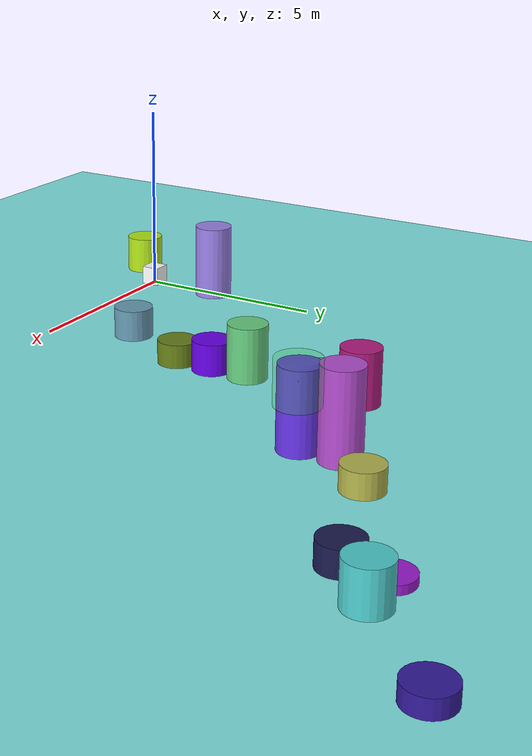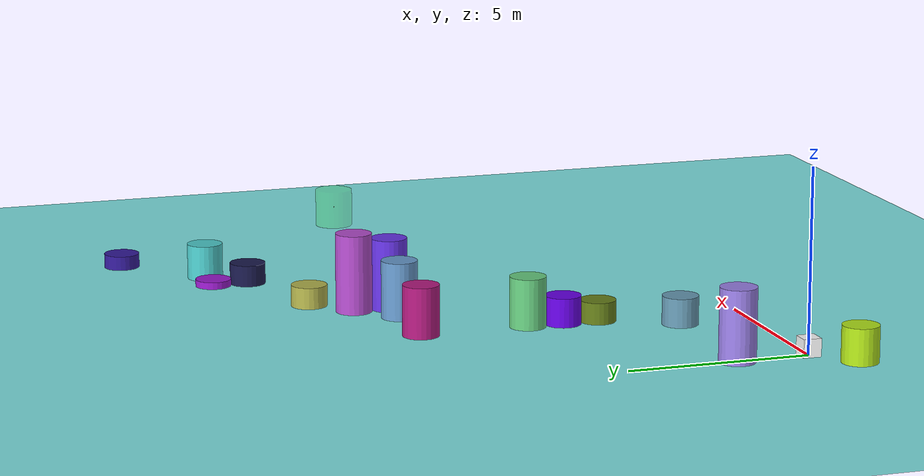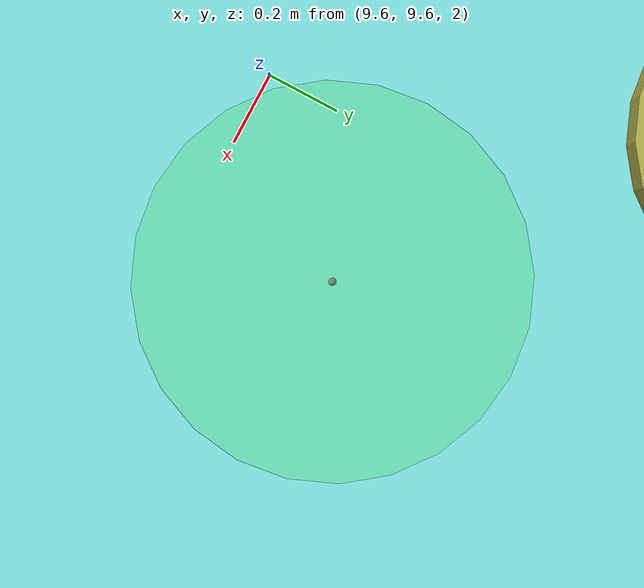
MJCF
<?xml version="1.0" ?>
<mujoco model="objects">
  <include file="objects_benchmark.xml" />
  <asset>
    <material name='plane' reflectance='0' texrepeat='1 1' texture='plane' texuniform='true'/>
    <texture builtin='checker' height='512' name='plane' rgb1='0.2 0.2 0.2' rgb2='0.4 0.4 0.4' type='2d' width='512'/>
    <texture builtin='gradient' height='128' rgb1='0.6 0.8 1' rgb2='0 0 0' type='skybox' width='128'/>
    <!--texture type="skybox" builtin="gradient" rgb1="1.0 1.0 1.0" rgb2="1.0 1.0 1.0" width="512" height="512"/-->
      <!--texture name="plane" type="2d" builtin="flat" rgb1="1 1 1" rgb2="1 1 1" width="512" height="512" mark="cross" markrgb="0 0 0"/-->
      <!--material name="plane" reflectance="0.0" texture="plane" texrepeat="3 3" texuniform="true"/-->
  </asset>

  <visual>
      <rgba com="0.502 1.0 0 0.5" contactforce="0.98 0.4 0.4 0.7" contactpoint="1.0 1.0 0.6 0.4"/>
      <scale com="0.2" forcewidth="0.035" contactwidth="0.10" contactheight="0.04"/>
      <global offwidth="640" offheight="480"/>
  </visual>

  <default>
    <geom contype="1" conaffinity="1" friction="0.6 0.3 0.3" rgba="0.5 0.6 0.7 1" margin="0.001" group="0"/>

    <light castshadow="false" diffuse="1 1 1"/>
    <camera fovy="60"/>
    <joint damping="0.01" armature="0.01" frictionloss="0.2" />
  </default>

  <worldbody>
    <light directional="true" diffuse=".8 .8 .8" pos="0 0 10" dir="0 0 -10"/>
    <geom name='floor' type='plane' conaffinity='1' condim='3' contype='1' rgba="0.5 0.9 0.9 0.1" material='plane' pos='0 0 0' size='0 0 1'/>
    <body pos="0 0 0.25" euler="0 0 0">
        <joint name="robot" pos = "0 0 -0.5"/>
        <geom type="box" size=".25 .25 .25" rgba="1 1 1 1" mass="10"/>
        <camera name="robot_camera" pos="0.25 0 0.25" euler="0 -90 270"/>
      </body>
  </worldbody>
</mujoco>

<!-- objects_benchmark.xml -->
<mujoco model="objects">
  <worldbody>
    <body name="object1" pos="-1.0 -1.0 0.5" euler="0 0 0">
      <inertial pos="0 0 0" mass="5.0" diaginertia="0.01 0.01 0.01"/>
      <joint type="free"/>
      <geom type="cylinder" size="0.5 0.5" rgba="0.7 0.9 0.1 1"/>
      <site name="object1_site" pos="0 0 0" quat="1 0 0 0" size="0.01"/>
    </body>
    <body name="object2" pos="0.0 2.0 1.0" euler="0 0 0">
      <inertial pos="0 0 0" mass="5.0" diaginertia="0.01 0.01 0.01"/>
      <joint type="free"/>
      <geom type="cylinder" size="0.5 1.0" rgba="0.6 0.5 0.9 1"/>
      <site name="object2_site" pos="0 0 0" quat="1 0 0 0" size="0.01"/>
    </body>
    <body name="object3" pos="4.0 2.0 0.4" euler="0 0 0">
      <inertial pos="0 0 0" mass="7.0" diaginertia="0.01 0.01 0.01"/>
      <joint type="free"/>
      <geom type="cylinder" size="0.5 0.4" rgba="0.4 0.6 0.7 1"/>
      <site name="object3_site" pos="0 0 0" quat="1 0 0 0" size="0.01"/>
    </body>
    <body name="object4" pos="5.0 4.0 0.3" euler="0 0 0">
      <inertial pos="0 0 0" mass="9.0" diaginertia="0.01 0.01 0.01"/>
      <joint type="free"/>
      <geom type="cylinder" size="0.5 0.3" rgba="0.4 0.5 0.1 1"/>
      <site name="object4_site" pos="0 0 0" quat="1 0 0 0" size="0.01"/>
    </body>
    <body name="object5" pos="5.0 5.0 0.4" euler="0 0 0">
      <inertial pos="0 0 0" mass="2.0" diaginertia="0.01 0.01 0.01"/>
      <joint type="free"/>
      <geom type="cylinder" size="0.5 0.4" rgba="0.4 0.0 0.9 1"/>
      <site name="object5_site" pos="0 0 0" quat="1 0 0 0" size="0.01"/>
    </body>
    <body name="object6" pos="5.0 6.0 0.7" euler="0 0 0">
      <inertial pos="0 0 0" mass="10.0" diaginertia="0.01 0.01 0.01"/>
      <joint type="free"/>
      <geom type="cylinder" size="0.5 0.7" rgba="0.4 0.8 0.5 1"/>
      <site name="object6_site" pos="0 0 0" quat="1 0 0 0" size="0.01"/>
    </body>
    <body name="object7" pos="5.0 9.0 0.7" euler="0 0 0">
      <inertial pos="0 0 0" mass="5.0" diaginertia="0.01 0.01 0.01"/>
      <joint type="free"/>
      <geom type="cylinder" size="0.5 0.7" rgba="0.7 0.1 0.5 1"/>
      <site name="object7_site" pos="0 0 0" quat="1 0 0 0" size="0.01"/>
    </body>
    <body name="object8" pos="8.0 9.0 1.0" euler="0 0 0">
      <inertial pos="0 0 0" mass="10.0" diaginertia="0.01 0.01 0.01"/>
      <joint type="free"/>
      <geom type="cylinder" size="0.5 1.0" rgba="0.4 0.2 0.9 1"/>
      <site name="object8_site" pos="0 0 0" quat="1 0 0 0" size="0.01"/>
    </body>
    <body name="object9" pos="7.0 9.0 0.8" euler="0 0 0">
      <inertial pos="0 0 0" mass="9.0" diaginertia="0.01 0.01 0.01"/>
      <joint type="free"/>
      <geom type="cylinder" size="0.5 0.8" rgba="0.4 0.6 0.8 1"/>
      <site name="object9_site" pos="0 0 0" quat="1 0 0 0" size="0.01"/>
    </body>
    <body name="object10" pos="8.0 10.0 1.1" euler="0 0 0">
      <inertial pos="0 0 0" mass="7.0" diaginertia="0.01 0.01 0.01"/>
      <joint type="free"/>
      <geom type="cylinder" size="0.5 1.1" rgba="0.7 0.3 0.8 1"/>
      <site name="object10_site" pos="0 0 0" quat="1 0 0 0" size="0.01"/>
    </body>
    <body name="object11" pos="9.0 11.0 0.3" euler="0 0 0">
      <inertial pos="0 0 0" mass="1.0" diaginertia="0.01 0.01 0.01"/>
      <joint type="free"/>
      <geom type="cylinder" size="0.5 0.3" rgba="0.7 0.7 0.3 1"/>
      <site name="object11_site" pos="0 0 0" quat="1 0 0 0" size="0.01"/>
    </body>
    <body name="object12" pos="12.0 13.0 0.1" euler="0 0 0">
      <inertial pos="0 0 0" mass="5.0" diaginertia="0.01 0.01 0.01"/>
      <joint type="free"/>
      <geom type="cylinder" size="0.5 0.1" rgba="0.6 0.1 0.8 1"/>
      <site name="object12_site" pos="0 0 0" quat="1 0 0 0" size="0.01"/>
    </body>
    <body name="object13" pos="12.0 12.0 0.3" euler="0 0 0">
      <inertial pos="0 0 0" mass="5.0" diaginertia="0.01 0.01 0.01"/>
      <joint type="free"/>
      <geom type="cylinder" size="0.5 0.3" rgba="0.1 0.1 0.3 1"/>
      <site name="object13_site" pos="0 0 0" quat="1 0 0 0" size="0.01"/>
    </body>
    <body name="object14" pos="15.0 15.0 0.2" euler="0 0 0">
      <inertial pos="0 0 0" mass="7.0" diaginertia="0.01 0.01 0.01"/>
      <joint type="free"/>
      <geom type="cylinder" size="0.5 0.2" rgba="0.2 0.1 0.6 1"/>
      <site name="object14_site" pos="0 0 0" quat="1 0 0 0" size="0.01"/>
    </body>
    <body name="object15" pos="13.0 13.0 0.5" euler="0 0 0">
      <inertial pos="0 0 0" mass="3.0" diaginertia="0.01 0.01 0.01"/>
      <joint type="free"/>
      <geom type="cylinder" size="0.5 0.5" rgba="0.3 0.8 0.8 1"/>
      <site name="object15_site" pos="0 0 0" quat="1 0 0 0" size="0.01"/>
    </body>
    <body name="goal" pos="10 10 2.5" euler="0 0 0">
      <geom type="cylinder" size="0.5 0.5" rgba="0.1 0.9 0.1 0.1"/>
      <site name="goal_site" pos="0 0 0" quat="1 0 0 0" size="0.01"/>
    </body>
  </worldbody>
  <sensor>
    <framepos name="object1_pos" objtype="site" objname="object1_site"/>
    <framepos name="object2_pos" objtype="site" objname="object2_site"/>
    <framepos name="object3_pos" objtype="site" objname="object3_site"/>
    <framepos name="object4_pos" objtype="site" objname="object4_site"/>
    <framepos name="object5_pos" objtype="site" objname="object5_site"/>
    <framepos name="object6_pos" objtype="site" objname="object6_site"/>
    <framepos name="object7_pos" objtype="site" objname="object7_site"/>
    <framepos name="object8_pos" objtype="site" objname="object8_site"/>
    <framepos name="object9_pos" objtype="site" objname="object9_site"/>
    <framepos name="object10_pos" objtype="site" objname="object10_site"/>
    <framepos name="object11_pos" objtype="site" objname="object11_site"/>
    <framepos name="object12_pos" objtype="site" objname="object12_site"/>
    <framepos name="object13_pos" objtype="site" objname="object13_site"/>
    <framepos name="object14_pos" objtype="site" objname="object14_site"/>
    <framepos name="object15_pos" objtype="site" objname="object15_site"/>
    <framepos name="goal_pos" objtype="site" objname="goal_site"/>
  </sensor>
</mujoco>
